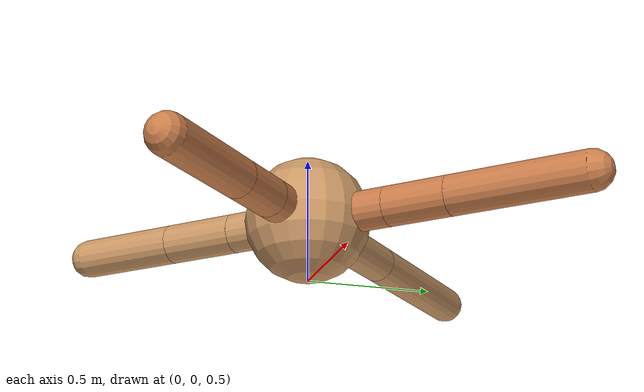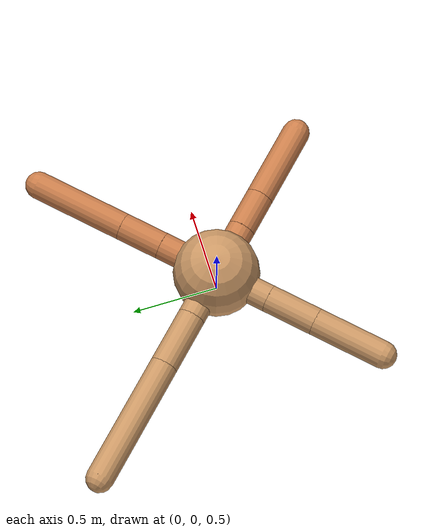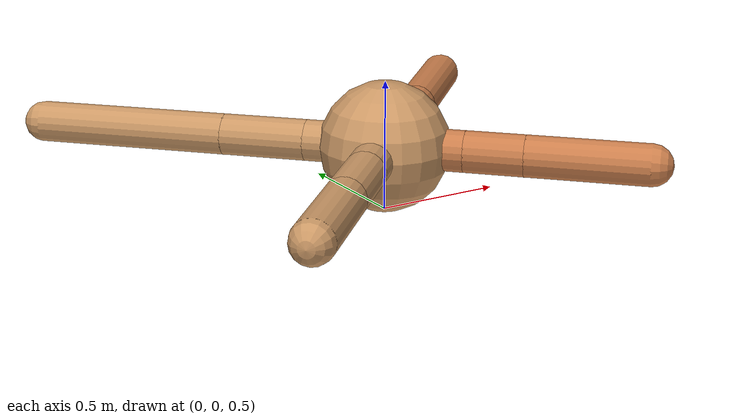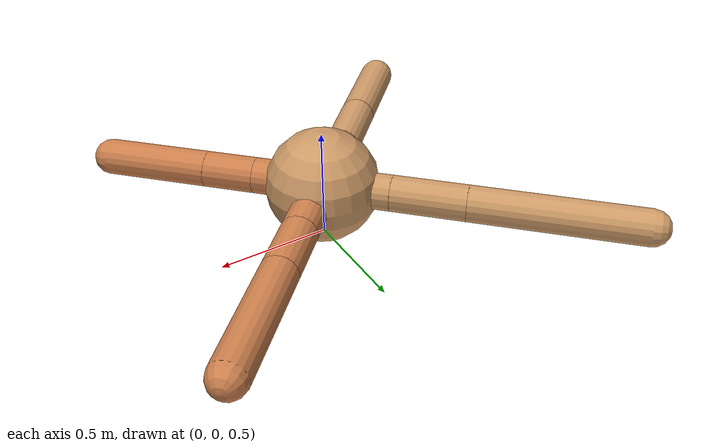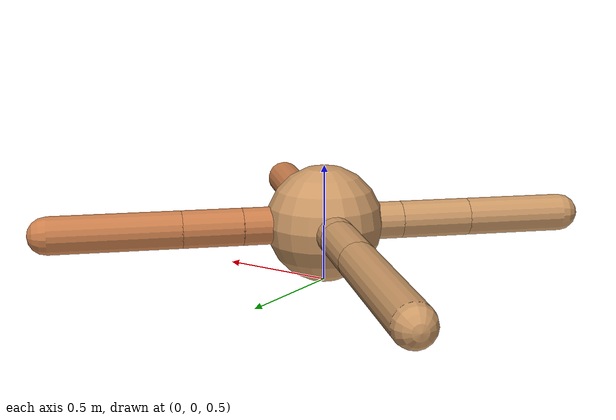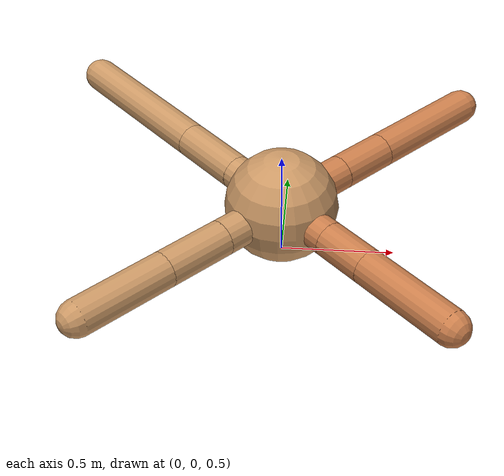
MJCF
<mujoco model="ant">
  <compiler angle="degree" coordinate="local" inertiafromgeom="true" />
  <option integrator="RK4" timestep="0.01" />
  <custom>
    <numeric data="0.0 0.0 0.55 1.0 0.0 0.0 0.0 0.0 1.0 0.0 -1.0 0.0 -1.0 0.0 1.0" name="init_qpos" />
  </custom>
  <default>
    <joint armature="1" damping="1" limited="true" />
    <geom conaffinity="0" condim="3" density="5.0" friction="1.5 0.1 0.1" margin="0.01" rgba="0.8 0.6 0.4 1" />
  </default>
  <worldbody>
    <body name="torso" pos="0 0 0.75">
      <geom name="torso_geom" pos="0 0 0" size="0.25" type="sphere" />

      <body name="front_left_leg" pos="0 0 0">
        <geom fromto="0.0 0.0 0.0 0.2486667977504291 0.2486667977504291 0.0" name="aux_1_geom" size="0.08" type="capsule" rgba=".8 .5 .3 1" />
        <body name="aux_1" pos="0.2486667977504291 0.2486667977504291 0.0">
          <joint axis="0 0 1" name="hip_1" pos="0.0 0.0 0.0" range="-40 40" type="hinge" />
          <geom fromto="0.0 0.0 0.0 0.1804322376569905 0.1804322376569905 0.0" name="left_leg_geom" size="0.08" type="capsule" rgba=".8 .5 .3 1" />
          <body pos="0.1804322376569905 0.1804322376569905 0.0" name="front_left_foot">
            <joint axis="-1 1 0" name="ankle_1" pos="0.0 0.0 0.0" range="30 100" type="hinge" />
            <geom fromto="0.0 0.0 0.0 0.3905325572435433 0.3905325572435433 0.0" name="left_ankle_geom" size="0.08" type="capsule" rgba=".8 .5 .3 1" />
          </body>
        </body>
      </body>
      <body name="front_right_leg" pos="0 0 0">
        <geom fromto="0.0 0.0 0.0 -0.21597773483707638 0.21597773483707638 0.0" name="aux_2_geom" size="0.08" type="capsule" />
        <body name="aux_2" pos="-0.21597773483707638 0.21597773483707638 0.0">
          <joint axis="0 0 1" name="hip_2" pos="0.0 0.0 0.0" range="-40 40" type="hinge" />
          <geom fromto="0.0 0.0 0.0 -0.23180770095527478 0.23180770095527478 0.0" name="right_leg_geom" size="0.08" type="capsule" />
          <body pos="-0.23180770095527478 0.23180770095527478 0.0" name="front_right_foot">
            <joint axis="1 1 0" name="ankle_2" pos="0.0 0.0 0.0" range="-100 -30" type="hinge" />
            <geom fromto="0.0 0.0 0.0 -0.5300385941305165 0.5300385941305165 0.0" name="right_ankle_geom" size="0.08" type="capsule" />
          </body>
        </body>
      </body>
      <body name="left_back_leg" pos="0 0 0">
        <geom fromto="0.0 0.0 0.0 -0.23737274395964542 -0.23737274395964542 0.0" name="aux_3_geom" size="0.08" type="capsule" />
        <body name="aux_3" pos="-0.23737274395964542 -0.23737274395964542 0.0">
          <joint axis="0 0 1" name="hip_3" pos="0.0 0.0 0.0" range="-40 40" type="hinge" />
          <geom fromto="0.0 0.0 0.0 -0.21079283593752607 -0.21079283593752607 0.0" name="back_leg_geom" size="0.08" type="capsule" />
          <body pos="-0.21079283593752607 -0.21079283593752607 0.0" name="left_back_foot">
            <joint axis="-1 1 0" name="ankle_3" pos="0.0 0.0 0.0" range="-100 -30" type="hinge" />
            <geom fromto="0.0 0.0 0.0 -0.3014096899091135 -0.3014096899091135 0.0" name="third_ankle_geom" size="0.08" type="capsule" />
          </body>
        </body>
      </body>
      <body name="right_back_leg" pos="0 0 0">
        <geom fromto="0.0 0.0 0.0 0.2153767543963081 -0.2153767543963081 0.0" name="aux_4_geom" size="0.08" type="capsule" rgba=".8 .5 .3 1" />
        <body name="aux_4" pos="0.2153767543963081 -0.2153767543963081 0.0">
          <joint axis="0 0 1" name="hip_4" pos="0.0 0.0 0.0" range="-40 40" type="hinge" />
          <geom fromto="0.0 0.0 0.0 0.1594209735550549 -0.1594209735550549 0.0" name="rightback_leg_geom" size="0.08" type="capsule" rgba=".8 .5 .3 1" />
          <body pos="0.1594209735550549 -0.1594209735550549 0.0" name="right_back_foot">
            <joint axis="1 1 0" name="ankle_4" pos="0.0 0.0 0.0" range="30 100" type="hinge" />
            <geom fromto="0.0 0.0 0.0 0.325194679984729 -0.325194679984729 0.0" name="fourth_ankle_geom" size="0.08" type="capsule" rgba=".8 .5 .3 1" />
          </body>
        </body>
      </body>
    </body>
  </worldbody>
  <actuator>
    <motor ctrllimited="true" ctrlrange="-1.0 1.0" joint="hip_4" gear="150" />
    <motor ctrllimited="true" ctrlrange="-1.0 1.0" joint="ankle_4" gear="150" />
    <motor ctrllimited="true" ctrlrange="-1.0 1.0" joint="hip_1" gear="150" />
    <motor ctrllimited="true" ctrlrange="-1.0 1.0" joint="ankle_1" gear="150" />
    <motor ctrllimited="true" ctrlrange="-1.0 1.0" joint="hip_2" gear="150" />
    <motor ctrllimited="true" ctrlrange="-1.0 1.0" joint="ankle_2" gear="150" />
    <motor ctrllimited="true" ctrlrange="-1.0 1.0" joint="hip_3" gear="150" />
    <motor ctrllimited="true" ctrlrange="-1.0 1.0" joint="ankle_3" gear="150" />
  </actuator>
</mujoco>
